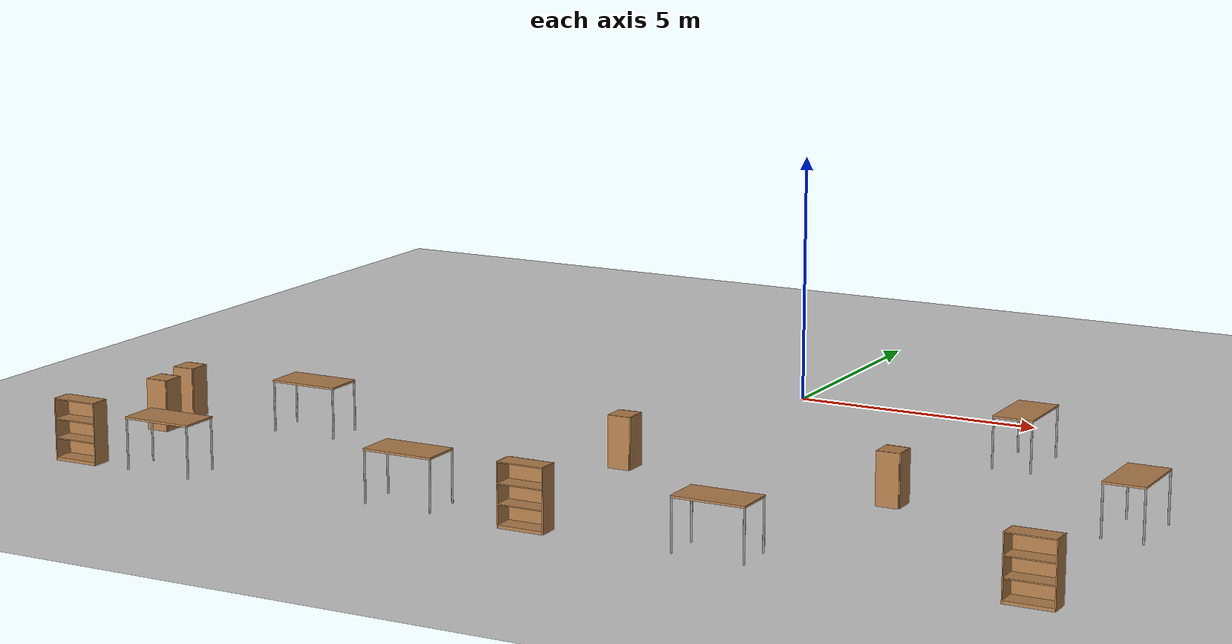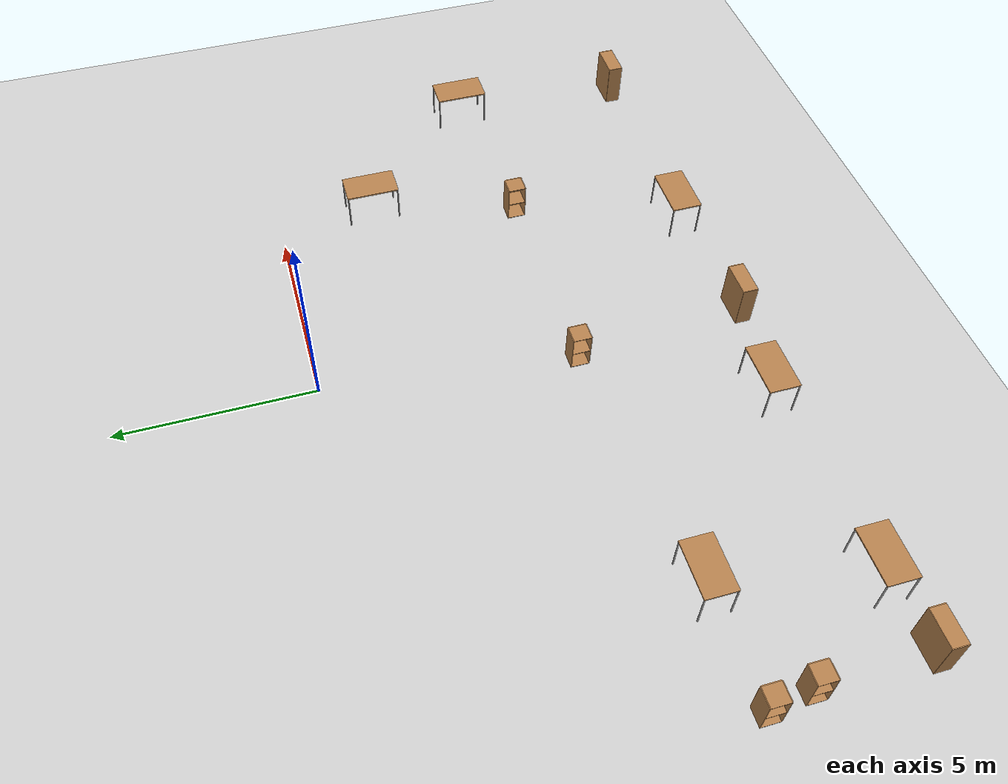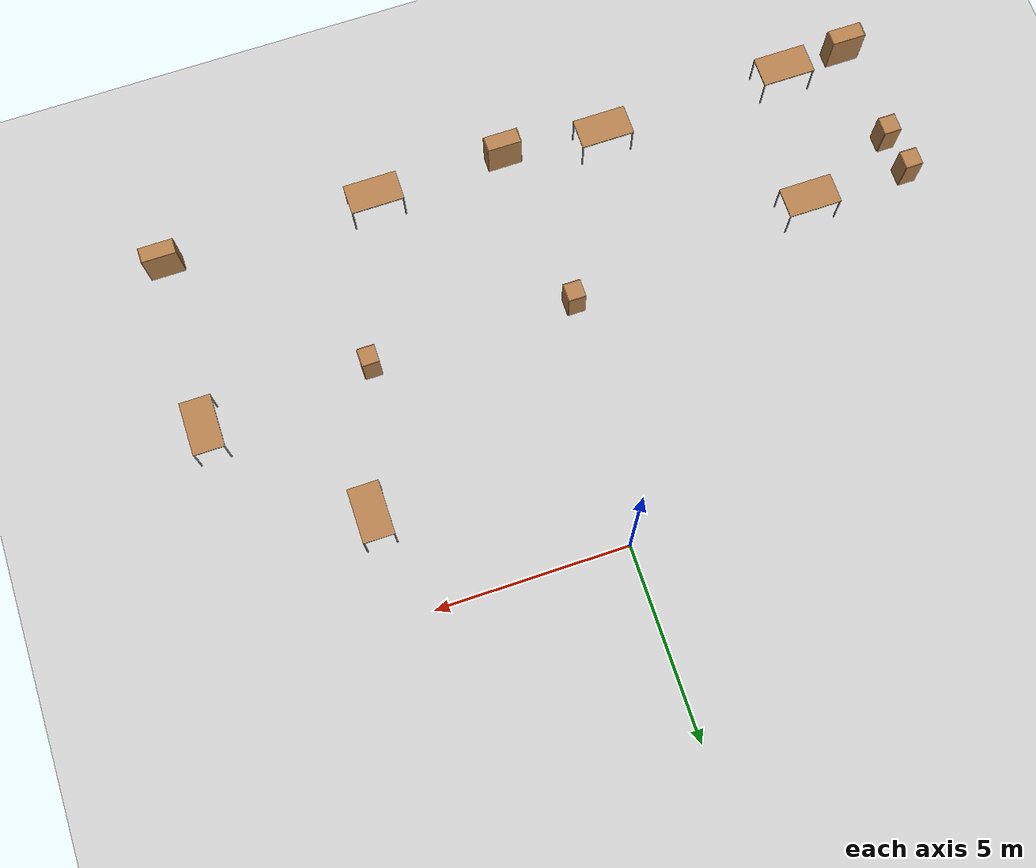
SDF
<sdf version="1.6">
 <world name="default">
  <model name="ground_plane">
   <static>1</static>
   <link name="link">
    <collision name="collision">
     <geometry><plane><normal>0 0 1</normal><size>100 100</size></plane></geometry>
     <surface><friction><ode><mu>100</mu><mu2>50</mu2></ode></friction></surface>
    </collision>
    <visual name="visual">
     <cast_shadows>0</cast_shadows>
     <geometry><plane><normal>0 0 1</normal><size>100 100</size></plane></geometry>
     <material>
      <script><uri>file://media/materials/scripts/gazebo.material</uri><name>Gazebo/Grey</name></script>
     </material>
    </visual>
   </link>
  </model>
  <model name="bookshelf">
   <static>1</static>
   <link name="link">
    <inertial><mass>1</mass></inertial>
    <collision name="back">
     <pose>0 0.005 0.6 0 -0 0</pose>
     <geometry><box><size>0.9 0.01 1.2</size></box></geometry>
    </collision>
    <visual name="visual1">
     <pose>0 0.005 0.6 0 -0 0</pose>
     <geometry><box><size>0.9 0.01 1.2</size></box></geometry>
     <material>
      <script><uri>file://media/materials/scripts/gazebo.material</uri><name>Gazebo/Wood</name></script>
     </material>
    </visual>
    <collision name="left_side">
     <pose>0.45 -0.195 0.6 0 -0 0</pose>
     <geometry><box><size>0.02 0.4 1.2</size></box></geometry>
    </collision>
    <visual name="visual2">
     <pose>0.45 -0.195 0.6 0 -0 0</pose>
     <geometry><box><size>0.02 0.4 1.2</size></box></geometry>
     <material>
      <script><uri>file://media/materials/scripts/gazebo.material</uri><name>Gazebo/Wood</name></script>
     </material>
    </visual>
    <collision name="right_side">
     <pose>-0.45 -0.195 0.6 0 -0 0</pose>
     <geometry><box><size>0.02 0.4 1.2</size></box></geometry>
    </collision>
    <visual name="visual3">
     <pose>-0.45 -0.195 0.6 0 -0 0</pose>
     <geometry><box><size>0.02 0.4 1.2</size></box></geometry>
     <material>
      <script><uri>file://media/materials/scripts/gazebo.material</uri><name>Gazebo/Wood</name></script>
     </material>
    </visual>
    <collision name="bottom">
     <pose>0 -0.195 0.03 0 -0 0</pose>
     <geometry><box><size>0.88 0.4 0.06</size></box></geometry>
    </collision>
    <visual name="visual4">
     <pose>0 -0.195 0.03 0 -0 0</pose>
     <geometry><box><size>0.88 0.4 0.06</size></box></geometry>
     <material>
      <script><uri>file://media/materials/scripts/gazebo.material</uri><name>Gazebo/Wood</name></script>
     </material>
    </visual>
    <collision name="top">
     <pose>0 -0.195 1.19 0 -0 0</pose>
     <geometry><box><size>0.88 0.4 0.02</size></box></geometry>
    </collision>
    <visual name="visual5">
     <pose>0 -0.195 1.19 0 -0 0</pose>
     <geometry><box><size>0.88 0.4 0.02</size></box></geometry>
     <material>
      <script><uri>file://media/materials/scripts/gazebo.material</uri><name>Gazebo/Wood</name></script>
     </material>
    </visual>
    <collision name="low_shelf">
     <pose>0 -0.195 0.43 0 -0 0</pose>
     <geometry><box><size>0.88 0.4 0.02</size></box></geometry>
    </collision>
    <visual name="visual6">
     <pose>0 -0.195 0.43 0 -0 0</pose>
     <geometry><box><size>0.88 0.4 0.02</size></box></geometry>
     <material>
      <script><uri>file://media/materials/scripts/gazebo.material</uri><name>Gazebo/Wood</name></script>
     </material>
    </visual>
    <collision name="high_shelf">
     <pose>0 -0.195 0.8 0 -0 0</pose>
     <geometry><box><size>0.88 0.4 0.02</size></box></geometry>
    </collision>
    <visual name="visual7">
     <pose>0 -0.195 0.8 0 -0 0</pose>
     <geometry><box><size>0.88 0.4 0.02</size></box></geometry>
     <material>
      <script><uri>file://media/materials/scripts/gazebo.material</uri><name>Gazebo/Wood</name></script>
     </material>
    </visual>
   </link>
   <pose>-9.9054 -10.7111 0 0 -0 0</pose>
  </model>
  <model name="bookshelf_clone_3">
   <static>1</static>
   <link name="link">
    <inertial><mass>1</mass></inertial>
    <collision name="back">
     <pose>0 0.005 0.6 0 -0 0</pose>
     <geometry><box><size>0.9 0.01 1.2</size></box></geometry>
    </collision>
    <visual name="visual1">
     <pose>0 0.005 0.6 0 -0 0</pose>
     <geometry><box><size>0.9 0.01 1.2</size></box></geometry>
     <material>
      <script><uri>file://media/materials/scripts/gazebo.material</uri><name>Gazebo/Wood</name></script>
     </material>
    </visual>
    <collision name="left_side">
     <pose>0.45 -0.195 0.6 0 -0 0</pose>
     <geometry><box><size>0.02 0.4 1.2</size></box></geometry>
    </collision>
    <visual name="visual2">
     <pose>0.45 -0.195 0.6 0 -0 0</pose>
     <geometry><box><size>0.02 0.4 1.2</size></box></geometry>
     <material>
      <script><uri>file://media/materials/scripts/gazebo.material</uri><name>Gazebo/Wood</name></script>
     </material>
    </visual>
    <collision name="right_side">
     <pose>-0.45 -0.195 0.6 0 -0 0</pose>
     <geometry><box><size>0.02 0.4 1.2</size></box></geometry>
    </collision>
    <visual name="visual3">
     <pose>-0.45 -0.195 0.6 0 -0 0</pose>
     <geometry><box><size>0.02 0.4 1.2</size></box></geometry>
     <material>
      <script><uri>file://media/materials/scripts/gazebo.material</uri><name>Gazebo/Wood</name></script>
     </material>
    </visual>
    <collision name="bottom">
     <pose>0 -0.195 0.03 0 -0 0</pose>
     <geometry><box><size>0.88 0.4 0.06</size></box></geometry>
    </collision>
    <visual name="visual4">
     <pose>0 -0.195 0.03 0 -0 0</pose>
     <geometry><box><size>0.88 0.4 0.06</size></box></geometry>
     <material>
      <script><uri>file://media/materials/scripts/gazebo.material</uri><name>Gazebo/Wood</name></script>
     </material>
    </visual>
    <collision name="top">
     <pose>0 -0.195 1.19 0 -0 0</pose>
     <geometry><box><size>0.88 0.4 0.02</size></box></geometry>
    </collision>
    <visual name="visual5">
     <pose>0 -0.195 1.19 0 -0 0</pose>
     <geometry><box><size>0.88 0.4 0.02</size></box></geometry>
     <material>
      <script><uri>file://media/materials/scripts/gazebo.material</uri><name>Gazebo/Wood</name></script>
     </material>
    </visual>
    <collision name="low_shelf">
     <pose>0 -0.195 0.43 0 -0 0</pose>
     <geometry><box><size>0.88 0.4 0.02</size></box></geometry>
    </collision>
    <visual name="visual6">
     <pose>0 -0.195 0.43 0 -0 0</pose>
     <geometry><box><size>0.88 0.4 0.02</size></box></geometry>
     <material>
      <script><uri>file://media/materials/scripts/gazebo.material</uri><name>Gazebo/Wood</name></script>
     </material>
    </visual>
    <collision name="high_shelf">
     <pose>0 -0.195 0.8 0 -0 0</pose>
     <geometry><box><size>0.88 0.4 0.02</size></box></geometry>
    </collision>
    <visual name="visual7">
     <pose>0 -0.195 0.8 0 -0 0</pose>
     <geometry><box><size>0.88 0.4 0.02</size></box></geometry>
     <material>
      <script><uri>file://media/materials/scripts/gazebo.material</uri><name>Gazebo/Wood</name></script>
     </material>
    </visual>
   </link>
   <pose>-0.315247 -10.666 0 0 -0 0</pose>
  </model>
  <model name="bookshelf_clone_4">
   <static>1</static>
   <link name="link">
    <inertial><mass>1</mass></inertial>
    <collision name="back">
     <pose>0 0.005 0.6 0 -0 0</pose>
     <geometry><box><size>0.9 0.01 1.2</size></box></geometry>
    </collision>
    <visual name="visual1">
     <pose>0 0.005 0.6 0 -0 0</pose>
     <geometry><box><size>0.9 0.01 1.2</size></box></geometry>
     <material>
      <script><uri>file://media/materials/scripts/gazebo.material</uri><name>Gazebo/Wood</name></script>
     </material>
    </visual>
    <collision name="left_side">
     <pose>0.45 -0.195 0.6 0 -0 0</pose>
     <geometry><box><size>0.02 0.4 1.2</size></box></geometry>
    </collision>
    <visual name="visual2">
     <pose>0.45 -0.195 0.6 0 -0 0</pose>
     <geometry><box><size>0.02 0.4 1.2</size></box></geometry>
     <material>
      <script><uri>file://media/materials/scripts/gazebo.material</uri><name>Gazebo/Wood</name></script>
     </material>
    </visual>
    <collision name="right_side">
     <pose>-0.45 -0.195 0.6 0 -0 0</pose>
     <geometry><box><size>0.02 0.4 1.2</size></box></geometry>
    </collision>
    <visual name="visual3">
     <pose>-0.45 -0.195 0.6 0 -0 0</pose>
     <geometry><box><size>0.02 0.4 1.2</size></box></geometry>
     <material>
      <script><uri>file://media/materials/scripts/gazebo.material</uri><name>Gazebo/Wood</name></script>
     </material>
    </visual>
    <collision name="bottom">
     <pose>0 -0.195 0.03 0 -0 0</pose>
     <geometry><box><size>0.88 0.4 0.06</size></box></geometry>
    </collision>
    <visual name="visual4">
     <pose>0 -0.195 0.03 0 -0 0</pose>
     <geometry><box><size>0.88 0.4 0.06</size></box></geometry>
     <material>
      <script><uri>file://media/materials/scripts/gazebo.material</uri><name>Gazebo/Wood</name></script>
     </material>
    </visual>
    <collision name="top">
     <pose>0 -0.195 1.19 0 -0 0</pose>
     <geometry><box><size>0.88 0.4 0.02</size></box></geometry>
    </collision>
    <visual name="visual5">
     <pose>0 -0.195 1.19 0 -0 0</pose>
     <geometry><box><size>0.88 0.4 0.02</size></box></geometry>
     <material>
      <script><uri>file://media/materials/scripts/gazebo.material</uri><name>Gazebo/Wood</name></script>
     </material>
    </visual>
    <collision name="low_shelf">
     <pose>0 -0.195 0.43 0 -0 0</pose>
     <geometry><box><size>0.88 0.4 0.02</size></box></geometry>
    </collision>
    <visual name="visual6">
     <pose>0 -0.195 0.43 0 -0 0</pose>
     <geometry><box><size>0.88 0.4 0.02</size></box></geometry>
     <material>
      <script><uri>file://media/materials/scripts/gazebo.material</uri><name>Gazebo/Wood</name></script>
     </material>
    </visual>
    <collision name="high_shelf">
     <pose>0 -0.195 0.8 0 -0 0</pose>
     <geometry><box><size>0.88 0.4 0.02</size></box></geometry>
    </collision>
    <visual name="visual7">
     <pose>0 -0.195 0.8 0 -0 0</pose>
     <geometry><box><size>0.88 0.4 0.02</size></box></geometry>
     <material>
      <script><uri>file://media/materials/scripts/gazebo.material</uri><name>Gazebo/Wood</name></script>
     </material>
    </visual>
   </link>
   <pose>8.89357 -10.5027 0 0 -0 0</pose>
  </model>
  <model name="cabinet">
   <static>1</static>
   <link name="cabinet_bottom_plate">
    <inertial>
     <pose>0 0 -1 0 -0 0</pose>
     <inertia><ixx>2.05</ixx><ixy>0</ixy><ixz>0</ixz><iyy>2.05</iyy><iyz>0</iyz><izz>2.05</izz></inertia>
     <mass>25</mass>
    </inertial>
    <collision name="cabinet_bottom_plate_geom">
     <pose>0 0 0.01 0 -0 0</pose>
     <geometry><box><size>0.45 0.45 0.02</size></box></geometry>
    </collision>
    <visual name="cabinet_bottom_plate_geom_visual">
     <pose>0 0 0.01 0 -0 0</pose>
     <geometry><box><size>0.45 0.45 0.02</size></box></geometry>
     <material>
      <script><uri>file://media/materials/scripts/gazebo.material</uri><name>Gazebo/Wood</name></script>
     </material>
    </visual>
    <collision name="cabinet_bottom_plate_geom_cabinet_back_plate">
     <pose>0.235 0 0.51 0 -0 0</pose>
     <geometry><box><size>0.02 0.45 1.02</size></box></geometry>
    </collision>
    <visual name="cabinet_bottom_plate_geom_cabinet_back_plate_visual">
     <pose>0.235 0 0.51 0 -0 0</pose>
     <geometry><box><size>0.02 0.45 1.02</size></box></geometry>
     <material>
      <script><uri>file://media/materials/scripts/gazebo.material</uri><name>Gazebo/Wood</name></script>
     </material>
    </visual>
    <collision name="cabinet_bottom_plate_geom_cabinet_left_plate">
     <pose>0 0.235 0.51 0 -0 0</pose>
     <geometry><box><size>0.45 0.02 1.02</size></box></geometry>
    </collision>
    <visual name="cabinet_bottom_plate_geom_cabinet_left_plate_visual">
     <pose>0 0.235 0.51 0 -0 0</pose>
     <geometry><box><size>0.45 0.02 1.02</size></box></geometry>
     <material>
      <script><uri>file://media/materials/scripts/gazebo.material</uri><name>Gazebo/Wood</name></script>
     </material>
    </visual>
    <collision name="cabinet_bottom_plate_geom_cabinet_middle_plate">
     <pose>0 0 0.51 0 -0 0</pose>
     <geometry><box><size>0.45 0.45 0.02</size></box></geometry>
    </collision>
    <visual name="cabinet_bottom_plate_geom_cabinet_middle_plate_visual">
     <pose>0 0 0.51 0 -0 0</pose>
     <geometry><box><size>0.45 0.45 0.02</size></box></geometry>
     <material>
      <script><uri>file://media/materials/scripts/gazebo.material</uri><name>Gazebo/Wood</name></script>
     </material>
    </visual>
    <collision name="cabinet_bottom_plate_geom_cabinet_right_plate">
     <pose>0 -0.235 0.51 0 -0 0</pose>
     <geometry><box><size>0.45 0.02 1.02</size></box></geometry>
    </collision>
    <visual name="cabinet_bottom_plate_geom_cabinet_right_plate_visual">
     <pose>0 -0.235 0.51 0 -0 0</pose>
     <geometry><box><size>0.45 0.02 1.02</size></box></geometry>
     <material>
      <script><uri>file://media/materials/scripts/gazebo.material</uri><name>Gazebo/Wood</name></script>
     </material>
    </visual>
    <collision name="cabinet_bottom_plate_geom_cabinet_top_plate">
     <pose>0 0 1.01 0 -0 0</pose>
     <geometry><box><size>0.45 0.45 0.02</size></box></geometry>
    </collision>
    <visual name="cabinet_bottom_plate_geom_cabinet_top_plate_visual">
     <pose>0 0 1.01 0 -0 0</pose>
     <geometry><box><size>0.45 0.45 0.02</size></box></geometry>
     <material>
      <script><uri>file://media/materials/scripts/gazebo.material</uri><name>Gazebo/Wood</name></script>
     </material>
    </visual>
   </link>
   <pose>-10.1871 -7.08274 0 0 -0 0</pose>
  </model>
  <model name="cabinet_clone_0">
   <static>1</static>
   <link name="cabinet_bottom_plate">
    <inertial>
     <pose>0 0 -1 0 -0 0</pose>
     <inertia><ixx>2.05</ixx><ixy>0</ixy><ixz>0</ixz><iyy>2.05</iyy><iyz>0</iyz><izz>2.05</izz></inertia>
     <mass>25</mass>
    </inertial>
    <collision name="cabinet_bottom_plate_geom">
     <pose>0 0 0.01 0 -0 0</pose>
     <geometry><box><size>0.45 0.45 0.02</size></box></geometry>
    </collision>
    <visual name="cabinet_bottom_plate_geom_visual">
     <pose>0 0 0.01 0 -0 0</pose>
     <geometry><box><size>0.45 0.45 0.02</size></box></geometry>
     <material>
      <script><uri>file://media/materials/scripts/gazebo.material</uri><name>Gazebo/Wood</name></script>
     </material>
    </visual>
    <collision name="cabinet_bottom_plate_geom_cabinet_back_plate">
     <pose>0.235 0 0.51 0 -0 0</pose>
     <geometry><box><size>0.02 0.45 1.02</size></box></geometry>
    </collision>
    <visual name="cabinet_bottom_plate_geom_cabinet_back_plate_visual">
     <pose>0.235 0 0.51 0 -0 0</pose>
     <geometry><box><size>0.02 0.45 1.02</size></box></geometry>
     <material>
      <script><uri>file://media/materials/scripts/gazebo.material</uri><name>Gazebo/Wood</name></script>
     </material>
    </visual>
    <collision name="cabinet_bottom_plate_geom_cabinet_left_plate">
     <pose>0 0.235 0.51 0 -0 0</pose>
     <geometry><box><size>0.45 0.02 1.02</size></box></geometry>
    </collision>
    <visual name="cabinet_bottom_plate_geom_cabinet_left_plate_visual">
     <pose>0 0.235 0.51 0 -0 0</pose>
     <geometry><box><size>0.45 0.02 1.02</size></box></geometry>
     <material>
      <script><uri>file://media/materials/scripts/gazebo.material</uri><name>Gazebo/Wood</name></script>
     </material>
    </visual>
    <collision name="cabinet_bottom_plate_geom_cabinet_middle_plate">
     <pose>0 0 0.51 0 -0 0</pose>
     <geometry><box><size>0.45 0.45 0.02</size></box></geometry>
    </collision>
    <visual name="cabinet_bottom_plate_geom_cabinet_middle_plate_visual">
     <pose>0 0 0.51 0 -0 0</pose>
     <geometry><box><size>0.45 0.45 0.02</size></box></geometry>
     <material>
      <script><uri>file://media/materials/scripts/gazebo.material</uri><name>Gazebo/Wood</name></script>
     </material>
    </visual>
    <collision name="cabinet_bottom_plate_geom_cabinet_right_plate">
     <pose>0 -0.235 0.51 0 -0 0</pose>
     <geometry><box><size>0.45 0.02 1.02</size></box></geometry>
    </collision>
    <visual name="cabinet_bottom_plate_geom_cabinet_right_plate_visual">
     <pose>0 -0.235 0.51 0 -0 0</pose>
     <geometry><box><size>0.45 0.02 1.02</size></box></geometry>
     <material>
      <script><uri>file://media/materials/scripts/gazebo.material</uri><name>Gazebo/Wood</name></script>
     </material>
    </visual>
    <collision name="cabinet_bottom_plate_geom_cabinet_top_plate">
     <pose>0 0 1.01 0 -0 0</pose>
     <geometry><box><size>0.45 0.45 0.02</size></box></geometry>
    </collision>
    <visual name="cabinet_bottom_plate_geom_cabinet_top_plate_visual">
     <pose>0 0 1.01 0 -0 0</pose>
     <geometry><box><size>0.45 0.45 0.02</size></box></geometry>
     <material>
      <script><uri>file://media/materials/scripts/gazebo.material</uri><name>Gazebo/Wood</name></script>
     </material>
    </visual>
   </link>
   <pose>4.65359 -6.39078 0 0 -0 0</pose>
  </model>
  <model name="cabinet_clone_1">
   <static>1</static>
   <link name="cabinet_bottom_plate">
    <inertial>
     <pose>0 0 -1 0 -0 0</pose>
     <inertia><ixx>2.05</ixx><ixy>0</ixy><ixz>0</ixz><iyy>2.05</iyy><iyz>0</iyz><izz>2.05</izz></inertia>
     <mass>25</mass>
    </inertial>
    <collision name="cabinet_bottom_plate_geom">
     <pose>0 0 0.01 0 -0 0</pose>
     <geometry><box><size>0.45 0.45 0.02</size></box></geometry>
    </collision>
    <visual name="cabinet_bottom_plate_geom_visual">
     <pose>0 0 0.01 0 -0 0</pose>
     <geometry><box><size>0.45 0.45 0.02</size></box></geometry>
     <material>
      <script><uri>file://media/materials/scripts/gazebo.material</uri><name>Gazebo/Wood</name></script>
     </material>
    </visual>
    <collision name="cabinet_bottom_plate_geom_cabinet_back_plate">
     <pose>0.235 0 0.51 0 -0 0</pose>
     <geometry><box><size>0.02 0.45 1.02</size></box></geometry>
    </collision>
    <visual name="cabinet_bottom_plate_geom_cabinet_back_plate_visual">
     <pose>0.235 0 0.51 0 -0 0</pose>
     <geometry><box><size>0.02 0.45 1.02</size></box></geometry>
     <material>
      <script><uri>file://media/materials/scripts/gazebo.material</uri><name>Gazebo/Wood</name></script>
     </material>
    </visual>
    <collision name="cabinet_bottom_plate_geom_cabinet_left_plate">
     <pose>0 0.235 0.51 0 -0 0</pose>
     <geometry><box><size>0.45 0.02 1.02</size></box></geometry>
    </collision>
    <visual name="cabinet_bottom_plate_geom_cabinet_left_plate_visual">
     <pose>0 0.235 0.51 0 -0 0</pose>
     <geometry><box><size>0.45 0.02 1.02</size></box></geometry>
     <material>
      <script><uri>file://media/materials/scripts/gazebo.material</uri><name>Gazebo/Wood</name></script>
     </material>
    </visual>
    <collision name="cabinet_bottom_plate_geom_cabinet_middle_plate">
     <pose>0 0 0.51 0 -0 0</pose>
     <geometry><box><size>0.45 0.45 0.02</size></box></geometry>
    </collision>
    <visual name="cabinet_bottom_plate_geom_cabinet_middle_plate_visual">
     <pose>0 0 0.51 0 -0 0</pose>
     <geometry><box><size>0.45 0.45 0.02</size></box></geometry>
     <material>
      <script><uri>file://media/materials/scripts/gazebo.material</uri><name>Gazebo/Wood</name></script>
     </material>
    </visual>
    <collision name="cabinet_bottom_plate_geom_cabinet_right_plate">
     <pose>0 -0.235 0.51 0 -0 0</pose>
     <geometry><box><size>0.45 0.02 1.02</size></box></geometry>
    </collision>
    <visual name="cabinet_bottom_plate_geom_cabinet_right_plate_visual">
     <pose>0 -0.235 0.51 0 -0 0</pose>
     <geometry><box><size>0.45 0.02 1.02</size></box></geometry>
     <material>
      <script><uri>file://media/materials/scripts/gazebo.material</uri><name>Gazebo/Wood</name></script>
     </material>
    </visual>
    <collision name="cabinet_bottom_plate_geom_cabinet_top_plate">
     <pose>0 0 1.01 0 -0 0</pose>
     <geometry><box><size>0.45 0.45 0.02</size></box></geometry>
    </collision>
    <visual name="cabinet_bottom_plate_geom_cabinet_top_plate_visual">
     <pose>0 0 1.01 0 -0 0</pose>
     <geometry><box><size>0.45 0.45 0.02</size></box></geometry>
     <material>
      <script><uri>file://media/materials/scripts/gazebo.material</uri><name>Gazebo/Wood</name></script>
     </material>
    </visual>
   </link>
   <pose>-0.749508 -6.39091 0 0 -0 0</pose>
  </model>
  <model name="cabinet_clone_3">
   <static>1</static>
   <link name="cabinet_bottom_plate">
    <inertial>
     <pose>0 0 -1 0 -0 0</pose>
     <inertia><ixx>2.05</ixx><ixy>0</ixy><ixz>0</ixz><iyy>2.05</iyy><iyz>0</iyz><izz>2.05</izz></inertia>
     <mass>25</mass>
    </inertial>
    <collision name="cabinet_bottom_plate_geom">
     <pose>0 0 0.01 0 -0 0</pose>
     <geometry><box><size>0.45 0.45 0.02</size></box></geometry>
    </collision>
    <visual name="cabinet_bottom_plate_geom_visual">
     <pose>0 0 0.01 0 -0 0</pose>
     <geometry><box><size>0.45 0.45 0.02</size></box></geometry>
     <material>
      <script><uri>file://media/materials/scripts/gazebo.material</uri><name>Gazebo/Wood</name></script>
     </material>
    </visual>
    <collision name="cabinet_bottom_plate_geom_cabinet_back_plate">
     <pose>0.235 0 0.51 0 -0 0</pose>
     <geometry><box><size>0.02 0.45 1.02</size></box></geometry>
    </collision>
    <visual name="cabinet_bottom_plate_geom_cabinet_back_plate_visual">
     <pose>0.235 0 0.51 0 -0 0</pose>
     <geometry><box><size>0.02 0.45 1.02</size></box></geometry>
     <material>
      <script><uri>file://media/materials/scripts/gazebo.material</uri><name>Gazebo/Wood</name></script>
     </material>
    </visual>
    <collision name="cabinet_bottom_plate_geom_cabinet_left_plate">
     <pose>0 0.235 0.51 0 -0 0</pose>
     <geometry><box><size>0.45 0.02 1.02</size></box></geometry>
    </collision>
    <visual name="cabinet_bottom_plate_geom_cabinet_left_plate_visual">
     <pose>0 0.235 0.51 0 -0 0</pose>
     <geometry><box><size>0.45 0.02 1.02</size></box></geometry>
     <material>
      <script><uri>file://media/materials/scripts/gazebo.material</uri><name>Gazebo/Wood</name></script>
     </material>
    </visual>
    <collision name="cabinet_bottom_plate_geom_cabinet_middle_plate">
     <pose>0 0 0.51 0 -0 0</pose>
     <geometry><box><size>0.45 0.45 0.02</size></box></geometry>
    </collision>
    <visual name="cabinet_bottom_plate_geom_cabinet_middle_plate_visual">
     <pose>0 0 0.51 0 -0 0</pose>
     <geometry><box><size>0.45 0.45 0.02</size></box></geometry>
     <material>
      <script><uri>file://media/materials/scripts/gazebo.material</uri><name>Gazebo/Wood</name></script>
     </material>
    </visual>
    <collision name="cabinet_bottom_plate_geom_cabinet_right_plate">
     <pose>0 -0.235 0.51 0 -0 0</pose>
     <geometry><box><size>0.45 0.02 1.02</size></box></geometry>
    </collision>
    <visual name="cabinet_bottom_plate_geom_cabinet_right_plate_visual">
     <pose>0 -0.235 0.51 0 -0 0</pose>
     <geometry><box><size>0.45 0.02 1.02</size></box></geometry>
     <material>
      <script><uri>file://media/materials/scripts/gazebo.material</uri><name>Gazebo/Wood</name></script>
     </material>
    </visual>
    <collision name="cabinet_bottom_plate_geom_cabinet_top_plate">
     <pose>0 0 1.01 0 -0 0</pose>
     <geometry><box><size>0.45 0.45 0.02</size></box></geometry>
    </collision>
    <visual name="cabinet_bottom_plate_geom_cabinet_top_plate_visual">
     <pose>0 0 1.01 0 -0 0</pose>
     <geometry><box><size>0.45 0.45 0.02</size></box></geometry>
     <material>
      <script><uri>file://media/materials/scripts/gazebo.material</uri><name>Gazebo/Wood</name></script>
     </material>
    </visual>
   </link>
   <pose>-10.0346 -8.15812 0 0 -0 0</pose>
  </model>
  <model name="table">
   <static>0</static>
   <link name="link">
    <collision name="surface">
     <pose>0 0 1 0 -0 0</pose>
     <geometry><box><size>1.5 0.8 0.03</size></box></geometry>
     <surface><friction><ode><mu>0.6</mu><mu2>0.6</mu2></ode></friction></surface>
    </collision>
    <visual name="visual1">
     <pose>0 0 1 0 -0 0</pose>
     <geometry><box><size>1.4 0.8 0.04</size></box></geometry>
     <material>
      <script><uri>file://media/materials/scripts/gazebo.material</uri><name>Gazebo/Wood</name></script>
     </material>
    </visual>
    <collision name="front_left_leg">
     <pose>0.68 0.38 0.5 0 -0 0</pose>
     <geometry><cylinder><radius>0.02</radius><length>1</length></cylinder></geometry>
    </collision>
    <visual name="front_left_leg">
     <pose>0.68 0.38 0.5 0 -0 0</pose>
     <geometry><cylinder><radius>0.02</radius><length>1</length></cylinder></geometry>
     <material>
      <script><uri>file://media/materials/scripts/gazebo.material</uri><name>Gazebo/Grey</name></script>
     </material>
    </visual>
    <collision name="front_right_leg">
     <pose>0.68 -0.38 0.5 0 -0 0</pose>
     <geometry><cylinder><radius>0.02</radius><length>1</length></cylinder></geometry>
    </collision>
    <visual name="front_right_leg">
     <pose>0.68 -0.38 0.5 0 -0 0</pose>
     <geometry><cylinder><radius>0.02</radius><length>1</length></cylinder></geometry>
     <material>
      <script><uri>file://media/materials/scripts/gazebo.material</uri><name>Gazebo/Grey</name></script>
     </material>
    </visual>
    <collision name="back_right_leg">
     <pose>-0.68 -0.38 0.5 0 -0 0</pose>
     <geometry><cylinder><radius>0.02</radius><length>1</length></cylinder></geometry>
    </collision>
    <visual name="back_right_leg">
     <pose>-0.68 -0.38 0.5 0 -0 0</pose>
     <geometry><cylinder><radius>0.02</radius><length>1</length></cylinder></geometry>
     <material>
      <script><uri>file://media/materials/scripts/gazebo.material</uri><name>Gazebo/Grey</name></script>
     </material>
    </visual>
    <collision name="back_left_leg">
     <pose>-0.68 0.38 0.5 0 -0 0</pose>
     <geometry><cylinder><radius>0.02</radius><length>1</length></cylinder></geometry>
    </collision>
    <visual name="back_left_leg">
     <pose>-0.68 0.38 0.5 0 -0 0</pose>
     <geometry><cylinder><radius>0.02</radius><length>1</length></cylinder></geometry>
     <material>
      <script><uri>file://media/materials/scripts/gazebo.material</uri><name>Gazebo/Grey</name></script>
     </material>
    </visual>
    <inertial>
     <inertia><ixx>1</ixx><ixy>0</ixy><ixz>0</ixz><iyy>1</iyy><iyz>0</iyz><izz>1</izz></inertia>
     <mass>1</mass>
    </inertial>
   </link>
   <pose>3.24933 -10.582 -1e-06 -2e-06 0 0</pose>
  </model>
  <model name="table_clone_0">
   <static>0</static>
   <link name="link">
    <collision name="surface">
     <pose>0 0 1 0 -0 0</pose>
     <geometry><box><size>1.5 0.8 0.03</size></box></geometry>
     <surface><friction><ode><mu>0.6</mu><mu2>0.6</mu2></ode></friction></surface>
    </collision>
    <visual name="visual1">
     <pose>0 0 1 0 -0 0</pose>
     <geometry><box><size>1.4 0.8 0.04</size></box></geometry>
     <material>
      <script><uri>file://media/materials/scripts/gazebo.material</uri><name>Gazebo/Wood</name></script>
     </material>
    </visual>
    <collision name="front_left_leg">
     <pose>0.68 0.38 0.5 0 -0 0</pose>
     <geometry><cylinder><radius>0.02</radius><length>1</length></cylinder></geometry>
    </collision>
    <visual name="front_left_leg">
     <pose>0.68 0.38 0.5 0 -0 0</pose>
     <geometry><cylinder><radius>0.02</radius><length>1</length></cylinder></geometry>
     <material>
      <script><uri>file://media/materials/scripts/gazebo.material</uri><name>Gazebo/Grey</name></script>
     </material>
    </visual>
    <collision name="front_right_leg">
     <pose>0.68 -0.38 0.5 0 -0 0</pose>
     <geometry><cylinder><radius>0.02</radius><length>1</length></cylinder></geometry>
    </collision>
    <visual name="front_right_leg">
     <pose>0.68 -0.38 0.5 0 -0 0</pose>
     <geometry><cylinder><radius>0.02</radius><length>1</length></cylinder></geometry>
     <material>
      <script><uri>file://media/materials/scripts/gazebo.material</uri><name>Gazebo/Grey</name></script>
     </material>
    </visual>
    <collision name="back_right_leg">
     <pose>-0.68 -0.38 0.5 0 -0 0</pose>
     <geometry><cylinder><radius>0.02</radius><length>1</length></cylinder></geometry>
    </collision>
    <visual name="back_right_leg">
     <pose>-0.68 -0.38 0.5 0 -0 0</pose>
     <geometry><cylinder><radius>0.02</radius><length>1</length></cylinder></geometry>
     <material>
      <script><uri>file://media/materials/scripts/gazebo.material</uri><name>Gazebo/Grey</name></script>
     </material>
    </visual>
    <collision name="back_left_leg">
     <pose>-0.68 0.38 0.5 0 -0 0</pose>
     <geometry><cylinder><radius>0.02</radius><length>1</length></cylinder></geometry>
    </collision>
    <visual name="back_left_leg">
     <pose>-0.68 0.38 0.5 0 -0 0</pose>
     <geometry><cylinder><radius>0.02</radius><length>1</length></cylinder></geometry>
     <material>
      <script><uri>file://media/materials/scripts/gazebo.material</uri><name>Gazebo/Grey</name></script>
     </material>
    </visual>
    <inertial>
     <inertia><ixx>1</ixx><ixy>0</ixy><ixz>0</ixz><iyy>1</iyy><iyz>0</iyz><izz>1</izz></inertia>
     <mass>1</mass>
    </inertial>
   </link>
   <pose>-8.06216 -10.6439 -8e-06 1e-06 -0 0</pose>
  </model>
  <model name="table_clone_1">
   <static>0</static>
   <link name="link">
    <collision name="surface">
     <pose>0 0 1 0 -0 0</pose>
     <geometry><box><size>1.5 0.8 0.03</size></box></geometry>
     <surface><friction><ode><mu>0.6</mu><mu2>0.6</mu2></ode></friction></surface>
    </collision>
    <visual name="visual1">
     <pose>0 0 1 0 -0 0</pose>
     <geometry><box><size>1.4 0.8 0.04</size></box></geometry>
     <material>
      <script><uri>file://media/materials/scripts/gazebo.material</uri><name>Gazebo/Wood</name></script>
     </material>
    </visual>
    <collision name="front_left_leg">
     <pose>0.68 0.38 0.5 0 -0 0</pose>
     <geometry><cylinder><radius>0.02</radius><length>1</length></cylinder></geometry>
    </collision>
    <visual name="front_left_leg">
     <pose>0.68 0.38 0.5 0 -0 0</pose>
     <geometry><cylinder><radius>0.02</radius><length>1</length></cylinder></geometry>
     <material>
      <script><uri>file://media/materials/scripts/gazebo.material</uri><name>Gazebo/Grey</name></script>
     </material>
    </visual>
    <collision name="front_right_leg">
     <pose>0.68 -0.38 0.5 0 -0 0</pose>
     <geometry><cylinder><radius>0.02</radius><length>1</length></cylinder></geometry>
    </collision>
    <visual name="front_right_leg">
     <pose>0.68 -0.38 0.5 0 -0 0</pose>
     <geometry><cylinder><radius>0.02</radius><length>1</length></cylinder></geometry>
     <material>
      <script><uri>file://media/materials/scripts/gazebo.material</uri><name>Gazebo/Grey</name></script>
     </material>
    </visual>
    <collision name="back_right_leg">
     <pose>-0.68 -0.38 0.5 0 -0 0</pose>
     <geometry><cylinder><radius>0.02</radius><length>1</length></cylinder></geometry>
    </collision>
    <visual name="back_right_leg">
     <pose>-0.68 -0.38 0.5 0 -0 0</pose>
     <geometry><cylinder><radius>0.02</radius><length>1</length></cylinder></geometry>
     <material>
      <script><uri>file://media/materials/scripts/gazebo.material</uri><name>Gazebo/Grey</name></script>
     </material>
    </visual>
    <collision name="back_left_leg">
     <pose>-0.68 0.38 0.5 0 -0 0</pose>
     <geometry><cylinder><radius>0.02</radius><length>1</length></cylinder></geometry>
    </collision>
    <visual name="back_left_leg">
     <pose>-0.68 0.38 0.5 0 -0 0</pose>
     <geometry><cylinder><radius>0.02</radius><length>1</length></cylinder></geometry>
     <material>
      <script><uri>file://media/materials/scripts/gazebo.material</uri><name>Gazebo/Grey</name></script>
     </material>
    </visual>
    <inertial>
     <inertia><ixx>1</ixx><ixy>0</ixy><ixz>0</ixz><iyy>1</iyy><iyz>0</iyz><izz>1</izz></inertia>
     <mass>1</mass>
    </inertial>
   </link>
   <pose>-2.9465 -10.4587 -4e-06 -2e-06 4e-06 0</pose>
  </model>
  <model name="table_clone_2">
   <static>0</static>
   <link name="link">
    <collision name="surface">
     <pose>0 0 1 0 -0 0</pose>
     <geometry><box><size>1.5 0.8 0.03</size></box></geometry>
     <surface><friction><ode><mu>0.6</mu><mu2>0.6</mu2></ode></friction></surface>
    </collision>
    <visual name="visual1">
     <pose>0 0 1 0 -0 0</pose>
     <geometry><box><size>1.4 0.8 0.04</size></box></geometry>
     <material>
      <script><uri>file://media/materials/scripts/gazebo.material</uri><name>Gazebo/Wood</name></script>
     </material>
    </visual>
    <collision name="front_left_leg">
     <pose>0.68 0.38 0.5 0 -0 0</pose>
     <geometry><cylinder><radius>0.02</radius><length>1</length></cylinder></geometry>
    </collision>
    <visual name="front_left_leg">
     <pose>0.68 0.38 0.5 0 -0 0</pose>
     <geometry><cylinder><radius>0.02</radius><length>1</length></cylinder></geometry>
     <material>
      <script><uri>file://media/materials/scripts/gazebo.material</uri><name>Gazebo/Grey</name></script>
     </material>
    </visual>
    <collision name="front_right_leg">
     <pose>0.68 -0.38 0.5 0 -0 0</pose>
     <geometry><cylinder><radius>0.02</radius><length>1</length></cylinder></geometry>
    </collision>
    <visual name="front_right_leg">
     <pose>0.68 -0.38 0.5 0 -0 0</pose>
     <geometry><cylinder><radius>0.02</radius><length>1</length></cylinder></geometry>
     <material>
      <script><uri>file://media/materials/scripts/gazebo.material</uri><name>Gazebo/Grey</name></script>
     </material>
    </visual>
    <collision name="back_right_leg">
     <pose>-0.68 -0.38 0.5 0 -0 0</pose>
     <geometry><cylinder><radius>0.02</radius><length>1</length></cylinder></geometry>
    </collision>
    <visual name="back_right_leg">
     <pose>-0.68 -0.38 0.5 0 -0 0</pose>
     <geometry><cylinder><radius>0.02</radius><length>1</length></cylinder></geometry>
     <material>
      <script><uri>file://media/materials/scripts/gazebo.material</uri><name>Gazebo/Grey</name></script>
     </material>
    </visual>
    <collision name="back_left_leg">
     <pose>-0.68 0.38 0.5 0 -0 0</pose>
     <geometry><cylinder><radius>0.02</radius><length>1</length></cylinder></geometry>
    </collision>
    <visual name="back_left_leg">
     <pose>-0.68 0.38 0.5 0 -0 0</pose>
     <geometry><cylinder><radius>0.02</radius><length>1</length></cylinder></geometry>
     <material>
      <script><uri>file://media/materials/scripts/gazebo.material</uri><name>Gazebo/Grey</name></script>
     </material>
    </visual>
    <inertial>
     <inertia><ixx>1</ixx><ixy>0</ixy><ixz>0</ixz><iyy>1</iyy><iyz>0</iyz><izz>1</izz></inertia>
     <mass>1</mass>
    </inertial>
   </link>
   <pose>-7.32263 -6.92538 -8e-06 1e-06 -0 0</pose>
  </model>
  <model name="table_clone_7">
   <static>0</static>
   <link name="link">
    <collision name="surface">
     <pose>0 0 1 0 -0 0</pose>
     <geometry><box><size>1.5 0.8 0.03</size></box></geometry>
     <surface><friction><ode><mu>0.6</mu><mu2>0.6</mu2></ode></friction></surface>
    </collision>
    <visual name="visual1">
     <pose>0 0 1 0 -0 0</pose>
     <geometry><box><size>1.4 0.8 0.04</size></box></geometry>
     <material>
      <script><uri>file://media/materials/scripts/gazebo.material</uri><name>Gazebo/Wood</name></script>
     </material>
    </visual>
    <collision name="front_left_leg">
     <pose>0.68 0.38 0.5 0 -0 0</pose>
     <geometry><cylinder><radius>0.02</radius><length>1</length></cylinder></geometry>
    </collision>
    <visual name="front_left_leg">
     <pose>0.68 0.38 0.5 0 -0 0</pose>
     <geometry><cylinder><radius>0.02</radius><length>1</length></cylinder></geometry>
     <material>
      <script><uri>file://media/materials/scripts/gazebo.material</uri><name>Gazebo/Grey</name></script>
     </material>
    </visual>
    <collision name="front_right_leg">
     <pose>0.68 -0.38 0.5 0 -0 0</pose>
     <geometry><cylinder><radius>0.02</radius><length>1</length></cylinder></geometry>
    </collision>
    <visual name="front_right_leg">
     <pose>0.68 -0.38 0.5 0 -0 0</pose>
     <geometry><cylinder><radius>0.02</radius><length>1</length></cylinder></geometry>
     <material>
      <script><uri>file://media/materials/scripts/gazebo.material</uri><name>Gazebo/Grey</name></script>
     </material>
    </visual>
    <collision name="back_right_leg">
     <pose>-0.68 -0.38 0.5 0 -0 0</pose>
     <geometry><cylinder><radius>0.02</radius><length>1</length></cylinder></geometry>
    </collision>
    <visual name="back_right_leg">
     <pose>-0.68 -0.38 0.5 0 -0 0</pose>
     <geometry><cylinder><radius>0.02</radius><length>1</length></cylinder></geometry>
     <material>
      <script><uri>file://media/materials/scripts/gazebo.material</uri><name>Gazebo/Grey</name></script>
     </material>
    </visual>
    <collision name="back_left_leg">
     <pose>-0.68 0.38 0.5 0 -0 0</pose>
     <geometry><cylinder><radius>0.02</radius><length>1</length></cylinder></geometry>
    </collision>
    <visual name="back_left_leg">
     <pose>-0.68 0.38 0.5 0 -0 0</pose>
     <geometry><cylinder><radius>0.02</radius><length>1</length></cylinder></geometry>
     <material>
      <script><uri>file://media/materials/scripts/gazebo.material</uri><name>Gazebo/Grey</name></script>
     </material>
    </visual>
    <inertial>
     <inertia><ixx>1</ixx><ixy>0</ixy><ixz>0</ixz><iyy>1</iyy><iyz>0</iyz><izz>1</izz></inertia>
     <mass>1</mass>
    </inertial>
   </link>
   <pose>5.72968 -2.58293 -8e-06 0 0 -1.5708</pose>
  </model>
  <model name="table_clone_7_clone_clone">
   <static>0</static>
   <link name="link">
    <collision name="surface">
     <pose>0 0 1 0 -0 0</pose>
     <geometry><box><size>1.5 0.8 0.03</size></box></geometry>
     <surface><friction><ode><mu>0.6</mu><mu2>0.6</mu2></ode></friction></surface>
    </collision>
    <visual name="visual1">
     <pose>0 0 1 0 -0 0</pose>
     <geometry><box><size>1.4 0.8 0.04</size></box></geometry>
     <material>
      <script><uri>file://media/materials/scripts/gazebo.material</uri><name>Gazebo/Wood</name></script>
     </material>
    </visual>
    <collision name="front_left_leg">
     <pose>0.68 0.38 0.5 0 -0 0</pose>
     <geometry><cylinder><radius>0.02</radius><length>1</length></cylinder></geometry>
    </collision>
    <visual name="front_left_leg">
     <pose>0.68 0.38 0.5 0 -0 0</pose>
     <geometry><cylinder><radius>0.02</radius><length>1</length></cylinder></geometry>
     <material>
      <script><uri>file://media/materials/scripts/gazebo.material</uri><name>Gazebo/Grey</name></script>
     </material>
    </visual>
    <collision name="front_right_leg">
     <pose>0.68 -0.38 0.5 0 -0 0</pose>
     <geometry><cylinder><radius>0.02</radius><length>1</length></cylinder></geometry>
    </collision>
    <visual name="front_right_leg">
     <pose>0.68 -0.38 0.5 0 -0 0</pose>
     <geometry><cylinder><radius>0.02</radius><length>1</length></cylinder></geometry>
     <material>
      <script><uri>file://media/materials/scripts/gazebo.material</uri><name>Gazebo/Grey</name></script>
     </material>
    </visual>
    <collision name="back_right_leg">
     <pose>-0.68 -0.38 0.5 0 -0 0</pose>
     <geometry><cylinder><radius>0.02</radius><length>1</length></cylinder></geometry>
    </collision>
    <visual name="back_right_leg">
     <pose>-0.68 -0.38 0.5 0 -0 0</pose>
     <geometry><cylinder><radius>0.02</radius><length>1</length></cylinder></geometry>
     <material>
      <script><uri>file://media/materials/scripts/gazebo.material</uri><name>Gazebo/Grey</name></script>
     </material>
    </visual>
    <collision name="back_left_leg">
     <pose>-0.68 0.38 0.5 0 -0 0</pose>
     <geometry><cylinder><radius>0.02</radius><length>1</length></cylinder></geometry>
    </collision>
    <visual name="back_left_leg">
     <pose>-0.68 0.38 0.5 0 -0 0</pose>
     <geometry><cylinder><radius>0.02</radius><length>1</length></cylinder></geometry>
     <material>
      <script><uri>file://media/materials/scripts/gazebo.material</uri><name>Gazebo/Grey</name></script>
     </material>
    </visual>
    <inertial>
     <inertia><ixx>1</ixx><ixy>0</ixy><ixz>0</ixz><iyy>1</iyy><iyz>0</iyz><izz>1</izz></inertia>
     <mass>1</mass>
    </inertial>
   </link>
   <pose>9.0144 -5.97556 -2e-06 0 0 -1.5708</pose>
  </model>
 </world>
</sdf>
